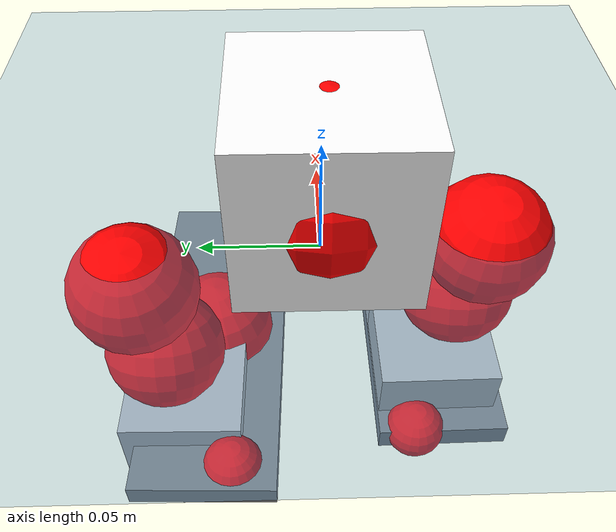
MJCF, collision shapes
<mujoco model="pi_12dof_release_v1">
  <compiler angle="radian" assetdir="assets" balanceinertia="true" inertiafromgeom="false"/>

  <option timestep="0.005" density="1.2" viscosity="2e-05"/>

  <size nkey="1"/>

  <visual>
    <quality shadowsize="8192"/>
    <map shadowclip="0.5"/>
  </visual>

  <default>
    <default class="/">
      <joint armature="0.01" damping="0.01" frictionloss="0.01"/>
      <geom contype="0" conaffinity="0" group="1" solref="-1000 -80"/>
      <site size="0.01 0.005 0.005" group="5"/>
      <general forcelimited="true" biastype="affine" gainprm="20" biasprm="0 -20 -0.5"/>
      <default class="foot">
        <geom size="0.0845 0.036 0.005" type="box" condim="6" group="4" priority="1" friction="0.9 0.2 0.2" solimp="0.015 1 0.005"/>
      </default>
      <default class="reward_collision_sphere">
        <geom group="5" rgba="1 0 0 1"/>
      </default>
    </default>
  </default>

  <asset>
    <texture type="skybox" colorspace="auto" name="//unnamed_texture_0" builtin="gradient" rgb1="0.95 0.95 0.95" rgb2="0.95 0.95 0.95" width="100" height="600"/>
    <texture type="2d" colorspace="auto" name="texplane" builtin="checker" rgb1="0.345 0.575 0.748" rgb2="0.345 0.575 0.748" markrgb="1 1 1" width="512" height="512"/>
    <material name="MatPlane" class="/" texture="texplane" texuniform="true" texrepeat="2 2" specular="0.9"/>
    <mesh name="baselink_1" class="/" file="baselink_1.STL"/>
    <mesh name="r_hip_pitch_link" class="/" file="r_hip_pitch_link.STL"/>
    <mesh name="r_hip_roll_link" class="/" file="r_hip_roll_link.STL"/>
    <mesh name="r_thigh_link" class="/" file="r_thigh_link.STL"/>
    <mesh name="r_calf_link" class="/" file="r_calf_link.STL"/>
    <mesh name="r_ankle_pitch_link" class="/" file="r_ankle_pitch_link.STL"/>
    <mesh name="r_ankle_roll_link" class="/" file="r_ankle_roll_link.STL"/>
    <mesh name="l_hip_pitch_link" class="/" file="l_hip_pitch_link.STL"/>
    <mesh name="l_hip_roll_link" class="/" file="l_hip_roll_link.STL"/>
    <mesh name="l_thigh_link" class="/" file="l_thigh_link.STL"/>
    <mesh name="l_calf_link" class="/" file="l_calf_link.STL"/>
    <mesh name="l_ankle_pitch_link" class="/" file="l_ankle_pitch_link.STL"/>
    <mesh name="l_ankle_roll_link" class="/" file="l_ankle_roll_link.STL"/>
  </asset>

  <worldbody>
    <geom name="floor" class="/" size="100 100 0.125" type="plane" group="0" material="MatPlane"/>
    <light name="toplight_shadow" class="/" pos="0 0 5" dir="0.0990148 0.0990148 -0.990148" type="directional" ambient="0.04 0.04 0.04" diffuse="0.55 0.55 0.55" specular="0.12 0.12 0.12"/>
    <light name="toplight_fill" class="/" pos="0 0 5" dir="0.0990148 0.0990148 -0.990148" type="directional" castshadow="false" ambient="0.04 0.04 0.04" diffuse="0.3 0.3 0.3" specular="0.08 0.08 0.08"/>
    <body name="trunk" pos="-0.00522761 -0.00178806 0.0176425" quat="0.999965 0.00319497 -0.00760006 0.0010477">
      <inertial pos="-0.00153826 -0.0148185 0.0164785" quat="0.750047 -0.00253412 -0.00367691 0.661369" mass="0.723104" diaginertia="0.018265 0.00102712 8.17674e-06"/>
      <joint name="//unnamed_joint_0" type="free"/>
      <geom name="//unnamed_geom_1" class="/" type="mesh" density="0" rgba="1 1 1 1" mesh="baselink_1"/>
      <geom name="//unnamed_geom_2" class="/" size="0.0359392 0.0359392 0.0359392" pos="0 0 0.0244446" type="box" rgba="1 1 1 1"/>
      <geom name="//unnamed_geom_3" class="reward_collision_sphere" size="0.0395332" pos="0 0 0.021389"/>
      <site name="imu" class="/" pos="-0.0318113 -0.0584576 0.0710197" size="0.00718785"/>
      <camera name="track" class="/" pos="0 -1.34332 0" quat="0.707107 0.707107 0 0" mode="trackcom"/>
      <camera name="ego_camera" class="/" pos="0.0884354 0 0.0550003" quat="-0.5 -0.5 0.5 0.5"/>
      <body name="r_hip_pitch_link" pos="0.00142799 -0.0242951 -0.0194164" quat="0.992201 0.00188327 -0.124635 -5.81861e-05">
        <inertial pos="0.0171407 -0.0385125 0.0171003" quat="-0.0206578 0.71496 0.057369 0.696502" mass="0.158502" diaginertia="0.000234976 1.68419e-05 2.53191e-07"/>
        <joint name="r_hip_pitch_joint" class="/" pos="0 0 0" axis="0.00166153 -0.998962 0.0455246" range="-1.87559 1.3987" armature="0.00569391" damping="0" frictionloss="0.005075"/>
        <geom name="//unnamed_geom_4" class="/" type="mesh" density="0" rgba="0.75294 0.75294 0.75294 1" mesh="r_hip_pitch_link"/>
        <geom name="//unnamed_geom_5" class="/" size="0.000359392 0.000359392 0.000359392" type="box" rgba="0.75294 0.75294 0.75294 1"/>
        <body name="r_hip_roll_link" pos="0.0148195 -0.0481154 -0.0140178" quat="1 0.000240489 -0.000151037 0.000858786">
          <inertial pos="-0.00112843 -0.00181653 -0.0147753" quat="0.686388 -0.0760717 -0.115707 0.71393" mass="0.157156" diaginertia="0.000834577 4.56365e-05 4.82875e-07"/>
          <joint name="r_hip_roll_joint" class="/" pos="0 0 0" axis="-0.997773 0.0325237 0.0582345" stiffness="0.0126761" range="-0.131716 0.485976" armature="0.0135571" damping="0.0106213" frictionloss="0.00287598"/>
          <geom name="//unnamed_geom_6" class="/" type="mesh" density="0" rgba="0.75294 0.75294 0.75294 1" mesh="r_hip_roll_link"/>
          <geom name="//unnamed_geom_7" class="/" size="0.000359392 0.000359392 0.000359392" type="box" rgba="0.75294 0.75294 0.75294 1"/>
          <geom name="//unnamed_geom_8" class="reward_collision_sphere" size="0.0287514"/>
          <body name="r_thigh_link" pos="-0.00776156 0.00244493 -0.0199962" quat="1 7.87462e-05 5.59547e-05 0.000259593">
            <inertial pos="0.0188039 0.0177426 -0.0151302" quat="0.737504 0.675107 0.00833071 -0.0158055" mass="0.0424248" diaginertia="0.000357096 1.26781e-05 1.64309e-07"/>
            <joint name="r_thigh_joint" class="/" pos="0 0 0" axis="0.0117731 -0.0265119 -0.999579" range="-0.0882673 0.294196" armature="0.0128398" damping="0" frictionloss="0.00934197"/>
            <geom name="//unnamed_geom_9" class="/" type="mesh" density="0" rgba="0.75294 0.75294 0.75294 1" mesh="r_thigh_link"/>
            <geom name="//unnamed_geom_10" class="/" size="0.000359392 0.000359392 0.000359392" type="box" rgba="0.75294 0.75294 0.75294 1"/>
            <body name="r_calf_link" pos="0.0113884 0.00160555 -0.0289286" quat="0.947054 -0.00122332 0.320953 0.0087733">
              <inertial pos="0.00899519 -0.00188581 -0.0211285" quat="0.995549 -0.0668354 0.0346481 0.0567046" mass="0.258698" diaginertia="0.00816968 0.000545548 4.7734e-07"/>
              <joint name="r_calf_joint" class="/" pos="0 0 0" axis="-0.0234156 -0.999281 0.02982" stiffness="0.0402247" range="-1.60699 0.427788" armature="0.00688365" damping="0" frictionloss="0.00556595"/>
              <geom name="//unnamed_geom_11" class="/" type="mesh" density="0" rgba="0.75294 0.75294 0.75294 1" mesh="r_calf_link"/>
              <geom name="//unnamed_geom_12" class="/" size="0.000359392 0.000359392 0.000359392" type="box" rgba="0.75294 0.75294 0.75294 1"/>
              <geom name="//unnamed_geom_13" class="reward_collision_sphere" size="0.0287514"/>
              <body name="r_ankle_pitch_link" pos="-0.00248415 0.0117248 -0.0387178" quat="0.979192 0.000472654 -0.20292 -0.00246464">
                <inertial pos="0.015949 -7.84228e-05 0.00837935" quat="0.00412086 0.681911 -0.0192825 0.73117" mass="0.0543767" diaginertia="0.000678309 3.61884e-05 2.8217e-07"/>
                <joint name="r_ankle_pitch_joint" class="/" pos="0 0 0" axis="0.0540101 -0.998104 0.0295191" range="-1.07349 0.511077" armature="0.010379" damping="0" frictionloss="0.00510563"/>
                <geom name="//unnamed_geom_14" class="/" type="mesh" density="0" rgba="0.75294 0.75294 0.75294 1" mesh="r_ankle_pitch_link"/>
                <geom name="//unnamed_geom_15" class="/" size="0.0280326 0.0287514 0.0179696" type="box" rgba="0.75294 0.75294 0.75294 1"/>
                <body name="r_ankle_roll_link" pos="0.106093 -0.00241035 0.00110447" quat="0.999994 -0.00293706 0.000935562 -0.00124087">
                  <inertial pos="-0.0206612 0.0164117 -0.0188226" quat="0.549628 0.408987 0.374697 0.624692" mass="0.249014" diaginertia="0.00326112 0.000136669 1.04908e-06"/>
                  <joint name="r_ankle_roll_joint" class="/" pos="0 0 0" axis="-0.999874 -0.0109968 0.0114672" range="0.220956 -0.0836455" armature="0.0126751" damping="0.0537008" frictionloss="0.0132105"/>
                  <geom name="//unnamed_geom_16" class="/" type="mesh" density="0" rgba="0.75294 0.75294 0.75294 1" mesh="r_ankle_roll_link"/>
                  <geom name="//unnamed_geom_17" class="/" type="mesh" rgba="0.75294 0.75294 0.75294 1" mesh="r_ankle_roll_link"/>
                  <geom name="right_foot" class="foot" size="0.0869153 0.0314224 0.00593041" pos="-0.0601361 0 -0.0134445"/>
                  <geom name="//unnamed_geom_19" class="reward_collision_sphere" size="0.0287514" pos="-0.0589569 0 -0.00611115"/>
                  <geom name="//unnamed_geom_20" class="reward_collision_sphere" size="0.0143757" pos="0.0176871 0.0134332 -0.0122223"/>
                  <geom name="//unnamed_geom_21" class="reward_collision_sphere" size="0.0143757" pos="-0.141497 0.0134332 -0.0122223"/>
                  <site name="right_foot" class="foot" pos="-0.0601361 0 -0.0134445" size="0.00718785"/>
                </body>
              </body>
            </body>
          </body>
        </body>
      </body>
      <body name="l_hip_pitch_link" pos="0.00269568 0.0285813 -0.0232645" quat="0.992508 -0.0024277 -0.12214 0.00210296">
        <inertial pos="0.00917783 0.052648 0.017638" quat="0.00104183 0.708988 0.00538055 0.705199" mass="0.175887" diaginertia="0.000379009 1.45178e-05 3.61289e-07"/>
        <joint name="l_hip_pitch_joint" class="/" pos="0 0 0" axis="-0.0757569 0.997033 -0.0136395" stiffness="0.06759" range="-0.899585 1.97073" armature="0.00732694" damping="0.0763605" frictionloss="0.00322686"/>
        <geom name="//unnamed_geom_22" class="/" type="mesh" density="0" rgba="0.75294 0.75294 0.75294 1" mesh="l_hip_pitch_link"/>
        <geom name="//unnamed_geom_23" class="/" size="0.000359392 0.000359392 0.000359392" type="box" rgba="0.75294 0.75294 0.75294 1"/>
        <body name="l_hip_roll_link" pos="-0.00273959 0.0535486 -0.0172773" quat="0.999977 0.000972475 0.00589469 -0.00316803">
          <inertial pos="-0.0208609 0.0137243 -0.000336006" quat="0.697734 -0.0758122 -0.077001 0.70816" mass="0.115192" diaginertia="0.000459378 2.69719e-05 2.19011e-07"/>
          <joint name="l_hip_roll_joint" class="/" pos="0 0 0" axis="-0.999973 0.00484773 -0.00543136" stiffness="0.0078826" range="-0.494992 0.350827" armature="0.0113535" damping="0" frictionloss="0.00700519"/>
          <geom name="//unnamed_geom_24" class="/" type="mesh" density="0" rgba="0.75294 0.75294 0.75294 1" mesh="l_hip_roll_link"/>
          <geom name="//unnamed_geom_25" class="/" size="0.000359392 0.000359392 0.000359392" type="box" rgba="0.75294 0.75294 0.75294 1"/>
          <geom name="//unnamed_geom_26" class="reward_collision_sphere" size="0.0287514"/>
          <body name="l_thigh_link" pos="0.0119083 -0.00238465 -0.00896768" quat="0.999975 -0.00310995 -0.0025773 -0.00587085">
            <inertial pos="0.0172884 -0.0138274 0.00337316" quat="0.712618 0.69894 -0.00728188 -0.0600467" mass="0.0465835" diaginertia="0.000328108 1.71374e-05 1.57926e-07"/>
            <joint name="l_thigh_joint" class="/" pos="0 0 0" axis="-0.00538541 -0.00920775 -0.999943" stiffness="0.00189975" range="-0.537721 0.404097" armature="0.0105437" damping="0.0407497" frictionloss="0.000696571"/>
            <geom name="//unnamed_geom_27" class="/" type="mesh" density="0" rgba="0.75294 0.75294 0.75294 1" mesh="l_thigh_link"/>
            <geom name="//unnamed_geom_28" class="/" size="0.000359392 0.000359392 0.000359392" type="box" rgba="0.75294 0.75294 0.75294 1"/>
            <body name="l_calf_link" pos="-0.0186018 -0.00439816 -0.0373202" quat="0.947616 -0.000106203 0.319412 0.000241883">
              <inertial pos="0.0149114 0.0144912 -0.0231015" quat="0.997096 -0.0511245 -0.00764983 -0.0559218" mass="0.291098" diaginertia="0.00493205 0.000359656 3.12227e-07"/>
              <joint name="l_calf_joint" class="/" pos="0 0 0" axis="-0.0320682 0.998423 0.0460851" stiffness="0.0747648" range="-0.339047 1.32222" armature="0.00490286" damping="0.0703135" frictionloss="0.00270335"/>
              <geom name="//unnamed_geom_29" class="/" type="mesh" density="0" rgba="0.75294 0.75294 0.75294 1" mesh="l_calf_link"/>
              <geom name="//unnamed_geom_30" class="/" size="0.000359392 0.000359392 0.000359392" type="box" rgba="0.75294 0.75294 0.75294 1"/>
              <geom name="//unnamed_geom_31" class="reward_collision_sphere" size="0.0287514"/>
              <body name="l_ankle_pitch_link" pos="0.00510459 -0.00804604 -0.0356719" quat="0.980425 -7.52774e-05 -0.196886 -0.00187654">
                <inertial pos="-0.00418752 0.0105534 0.0159412" quat="-0.0349432 0.672248 -0.0240628 0.73911" mass="0.0884305" diaginertia="0.000624528 3.43443e-05 3.20756e-07"/>
                <joint name="l_ankle_pitch_joint" class="/" pos="0 0 0" axis="0.000204427 1 4.83111e-06" range="-0.252009 1.22545" armature="0.0112737" damping="0.0949643" frictionloss="0.0123414"/>
                <geom name="//unnamed_geom_32" class="/" type="mesh" density="0" rgba="0.75294 0.75294 0.75294 1" mesh="l_ankle_pitch_link"/>
                <geom name="//unnamed_geom_33" class="/" size="0.0280326 0.0287514 0.0179696" type="box" rgba="0.75294 0.75294 0.75294 1"/>
                <body name="l_ankle_roll_link" pos="0.105482 -0.0139273 0.0135911" quat="0.999956 -0.00116464 0.00184654 -0.00914113">
                  <inertial pos="-0.0364617 0.000686718 -0.00570975" quat="0.618461 0.377591 0.429112 0.539254" mass="0.176937" diaginertia="0.00235472 0.000103363 7.75394e-07"/>
                  <joint name="l_ankle_roll_joint" class="/" pos="0 0 0" axis="-1 -2.49087e-06 0.00031301" stiffness="0.0342309" range="-0.269564 0.525222" armature="0.00858821" damping="0.069326" frictionloss="0.010985"/>
                  <geom name="//unnamed_geom_34" class="/" type="mesh" density="0" rgba="0.75294 0.75294 0.75294 1" mesh="l_ankle_roll_link"/>
                  <geom name="//unnamed_geom_35" class="/" type="mesh" rgba="0.75294 0.75294 0.75294 1" mesh="l_ankle_roll_link"/>
                  <geom name="left_foot" class="foot" size="0.0972448 0.0345415 0.00540365" pos="-0.0601361 0 -0.0134445"/>
                  <geom name="//unnamed_geom_37" class="reward_collision_sphere" size="0.0287514" pos="-0.0589569 0 -0.00611115"/>
                  <geom name="//unnamed_geom_38" class="reward_collision_sphere" size="0.0143757" pos="0.0176871 -0.0134332 -0.0122223"/>
                  <geom name="//unnamed_geom_39" class="reward_collision_sphere" size="0.0143757" pos="-0.141497 -0.0134332 -0.0122223"/>
                  <site name="left_foot" class="foot" pos="-0.0601361 0 -0.0134445" size="0.00718785"/>
                </body>
              </body>
            </body>
          </body>
        </body>
      </body>
    </body>
  </worldbody>

  <contact>
    <pair class="/" geom1="floor" geom2="right_foot" name="//unnamed_contact_1"/>
    <pair class="/" geom1="floor" geom2="left_foot" name="//unnamed_contact_0"/>
  </contact>

  <actuator>
    <general name="r_hip_pitch_joint" class="/" joint="r_hip_pitch_joint" forcerange="-6.35332 6.35332" gainprm="21.0895" biasprm="0 -21.0895 -0.502699"/>
    <general name="r_hip_roll_joint" class="/" joint="r_hip_roll_joint" forcerange="-25.4405 25.4405" gainprm="21.0895" biasprm="0 -21.0895 -0.502699"/>
    <general name="r_thigh_joint" class="/" joint="r_thigh_joint" forcerange="-16.145 16.145" gainprm="21.0895" biasprm="0 -21.0895 -0.502699"/>
    <general name="r_calf_joint" class="/" joint="r_calf_joint" forcerange="-4.48477 4.48477" gainprm="21.0895" biasprm="0 -21.0895 -0.502699"/>
    <general name="r_ankle_pitch_joint" class="/" joint="r_ankle_pitch_joint" forcerange="-20.7017 20.7017" gainprm="21.0895" biasprm="0 -21.0895 -0.502699"/>
    <general name="r_ankle_roll_joint" class="/" joint="r_ankle_roll_joint" forcerange="-25.3572 25.3572" gainprm="21.0895" biasprm="0 -21.0895 -0.502699"/>
    <general name="l_hip_pitch_joint" class="/" joint="l_hip_pitch_joint" forcerange="-16.5633 16.5633" gainprm="21.0895" biasprm="0 -21.0895 -0.502699"/>
    <general name="l_hip_roll_joint" class="/" joint="l_hip_roll_joint" forcerange="-11.5778 11.5778" gainprm="21.0895" biasprm="0 -21.0895 -0.502699"/>
    <general name="l_thigh_joint" class="/" joint="l_thigh_joint" forcerange="-8.58516 8.58516" gainprm="21.0895" biasprm="0 -21.0895 -0.502699"/>
    <general name="l_calf_joint" class="/" joint="l_calf_joint" forcerange="-18.4347 18.4347" gainprm="21.0895" biasprm="0 -21.0895 -0.502699"/>
    <general name="l_ankle_pitch_joint" class="/" joint="l_ankle_pitch_joint" forcerange="-8.75723 8.75723" gainprm="21.0895" biasprm="0 -21.0895 -0.502699"/>
    <general name="l_ankle_roll_joint" class="/" joint="l_ankle_roll_joint" forcerange="-16.2874 16.2874" gainprm="21.0895" biasprm="0 -21.0895 -0.502699"/>
  </actuator>

  <sensor>
    <gyro site="imu" name="imu_angular_velocity"/>
    <velocimeter site="imu" name="imu_linear_velocity"/>
    <framelinvel objtype="site" objname="left_foot" name="left_foot_global_linear_velocity"/>
    <framelinvel objtype="site" objname="right_foot" name="right_foot_global_linear_velocity"/>
  </sensor>

  <keyframe>
    <key name="home" qpos="0 0 0.291 1 0 0 0 0.4 0 0 -0.8 0.4 0 -0.4 0 0 0.8 -0.4 0"/>
  </keyframe>
</mujoco>
